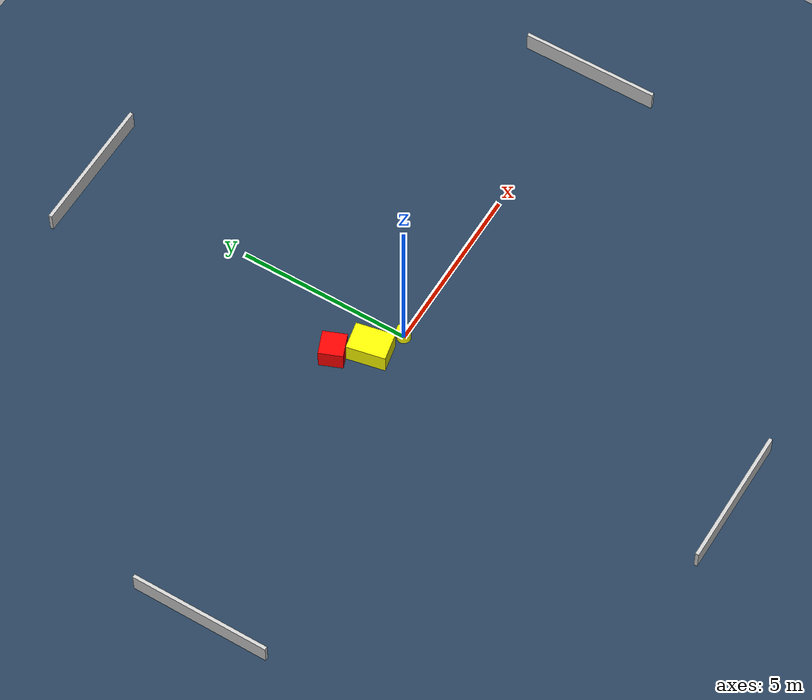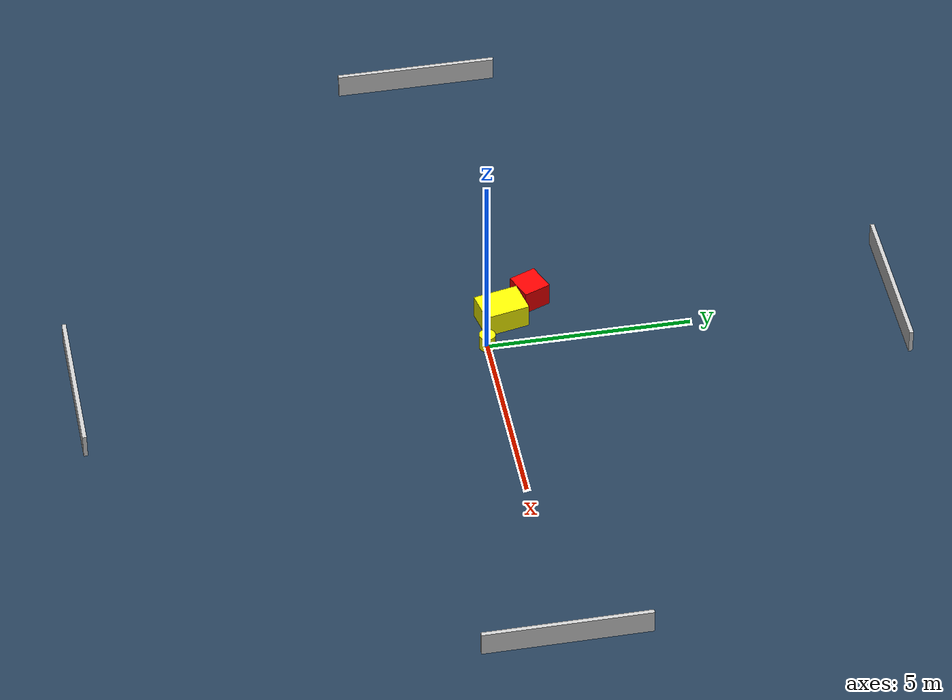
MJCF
<?xml version="1.0" ?>
<mujoco model="generated_environment">
  <option timestep="0.01" integrator="RK4" cone="elliptic"/>
  <default>
    <geom density="1"/>
  </default>
  <asset>
    <texture builtin="gradient" height="3072" name="skybox" rgb1="0.3 0.5 0.7" rgb2="0 0 0" type="skybox" width="512"/>
    <texture builtin="checker" height="300" name="groundplane" rgb1="0.2 0.3 0.4" rgb2="0.1 0.2 0.3" type="2d" width="300"/>
    <material name="groundplane" reflectance="0.2" texrepeat="5 5" texture="groundplane"/>
  </asset>
  <worldbody>
    <light dir="0 0 -1" directional="true" pos="0 0 1.5"/>
    <geom condim="3" friction="0.5 0.005 0.001" material="groundplane" name="floor" pos="0 0 0" size="0 0 0.05" type="plane"/>
    <body name="walls">
      <geom name="wall_1" condim="4" pos="-10.0 0.0 0.3" rgba="0.800000011920929 0.800000011920929 0.800000011920929 1.0" size="0.05 2.0 0.3" type="box"/>
      <geom name="wall_2" condim="4" pos="10.0 0.0 0.3" rgba="0.800000011920929 0.800000011920929 0.800000011920929 1.0" size="0.05 2.0 0.3" type="box"/>
      <geom name="wall_3" condim="4" pos="0.0 -10.0 0.3" rgba="0.800000011920929 0.800000011920929 0.800000011920929 1.0" size="2.0 0.05 0.3" type="box"/>
      <geom name="wall_4" condim="4" pos="0.0 10.0 0.3" rgba="0.800000011920929 0.800000011920929 0.800000011920929 1.0" size="2.0 0.05 0.3" type="box"/>
    </body>
    <body name="robot">
      <joint name="joint_x" type="slide" pos="0 0 0" axis="1 0 0"/>
      <joint name="joint_y" type="slide" pos="0 0 0" axis="0 1 0"/>
      <geom name="robot" type="cylinder" pos="0.0 0.0 0.2" size="0.2 0.2 0.0" mass="5.0" friction="1.0 0.005 0.0001" condim="4" rgba="1.0 1.0 0.0 1.0"/>
    </body>
    <body name="obstacle_1_movable">
      <geom name="obstacle_1_movable" condim="4" pos="-0.8650127547997121 0.5078686522746705 0.3" euler="0 0 191.60381772396929" friction="0.0 0.005 0.001" rgba="1.0 1.0 0.0 1.0" size="0.406029413744168 0.5578044755291705 0.3" type="box" mass="0.1"/>
      <joint type="free"/>
    </body>
    <body name="obstacle_2_static">
      <geom name="obstacle_2_static" condim="4" pos="-1.4631870186965226 1.3180195269297303 0.3" euler="0 0 201.91527952662165" friction="0.0 0.005 0.001" rgba="1.0 0.0 0.0 1.0" size="0.3549044719462323 0.3445297984849809 0.3" type="box"/>
    </body>
  </worldbody>
  <actuator>
    <motor name="actuator_x" joint="joint_x" gear="1" ctrlrange="-1 1"/>
    <motor name="actuator_y" joint="joint_y" gear="1" ctrlrange="-1 1"/>
  </actuator>
</mujoco>
